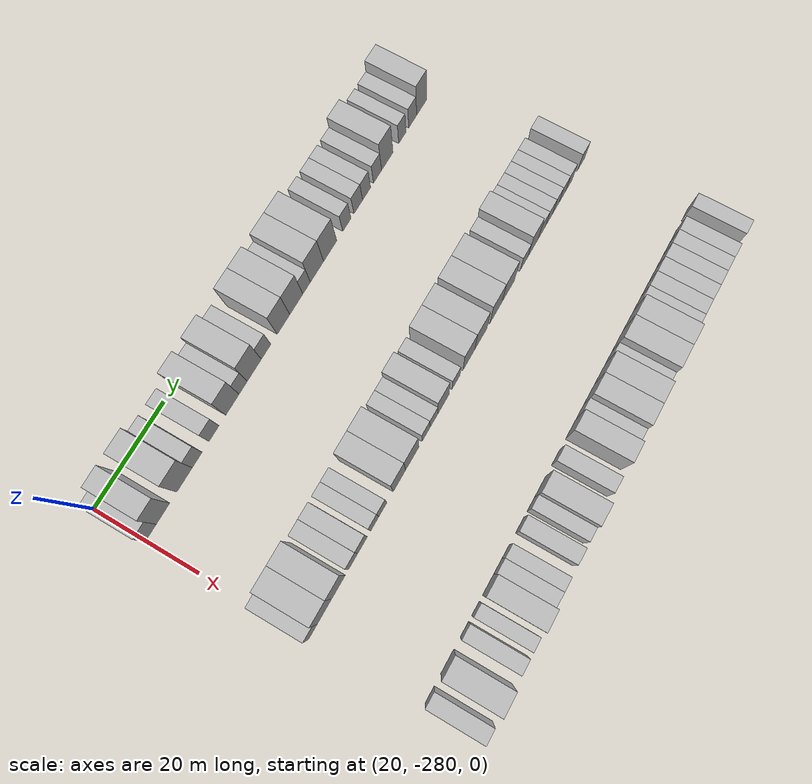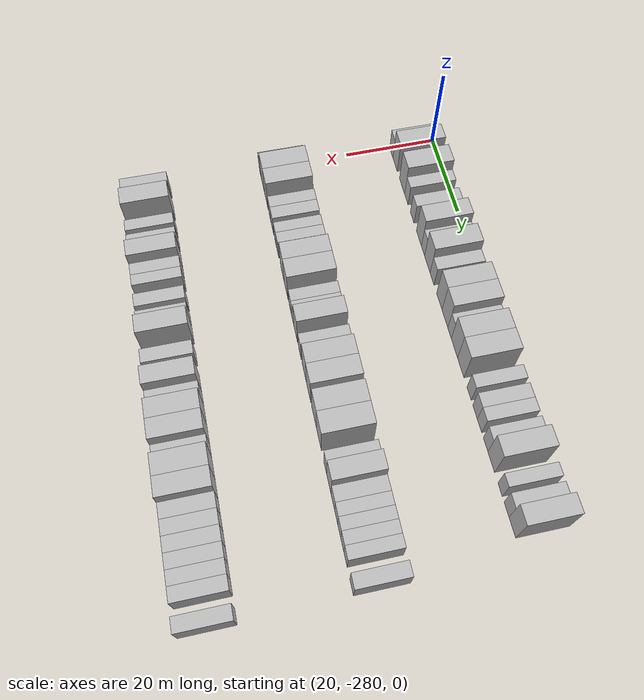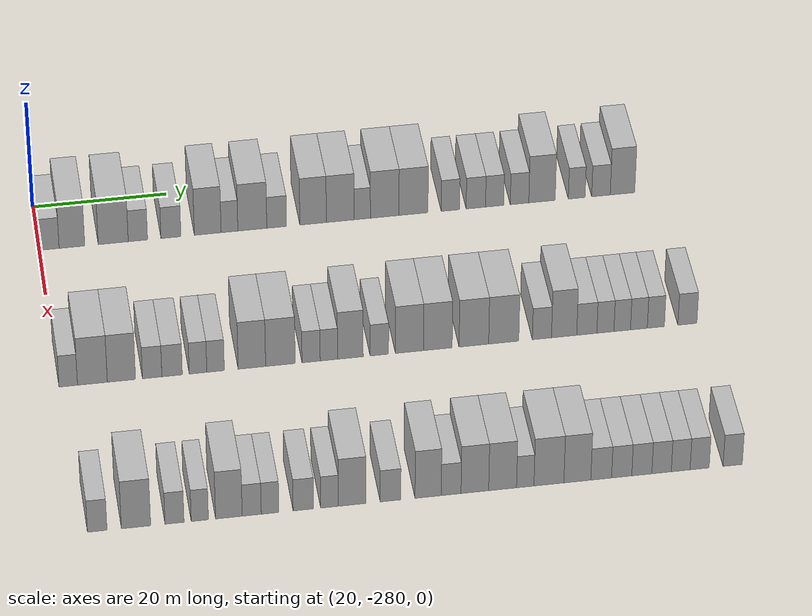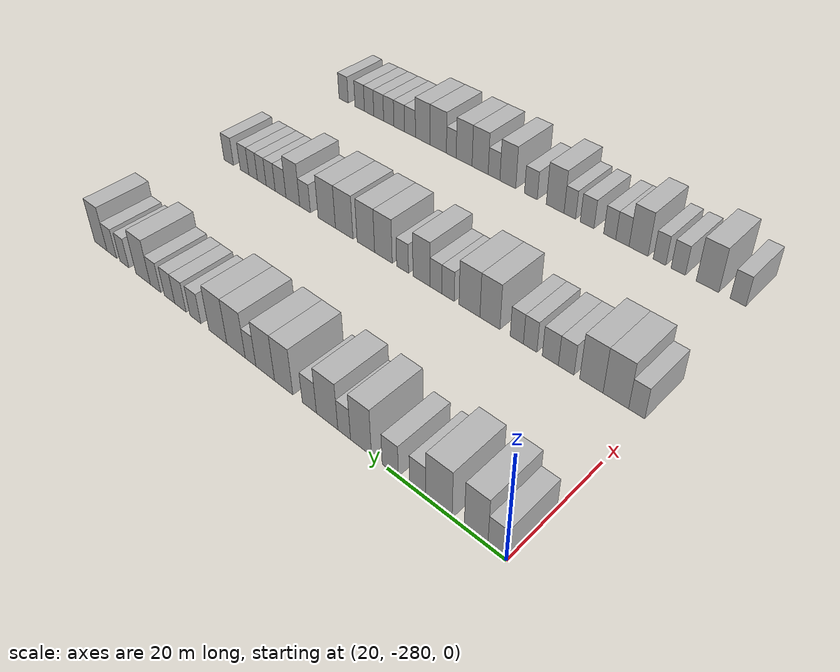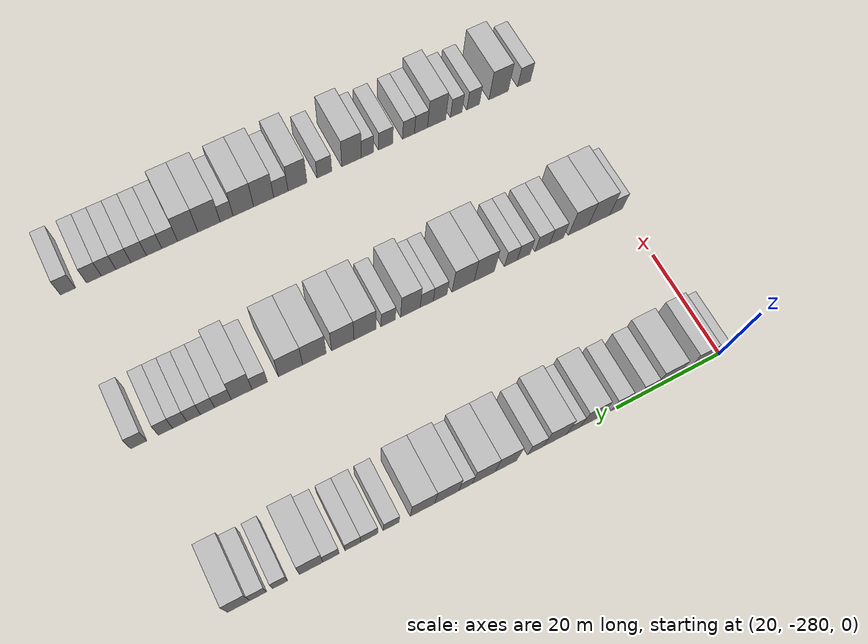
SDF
<sdf version="1.6">
 <world name="default">
  <model name="building_1">
   <static>1</static>
   <pose>25.0000 -278.5188 0 0.000000 0.000000 0.000000</pose>
   <link name="link">
    <pose>0 0 3.00 0 0 0</pose>
    <collision name="collision"><geometry><box><size>10.0000 2.9624 6.0000</size></box></geometry></collision>
    <visual name="visual">
     <cast_shadows>0</cast_shadows>
     <geometry><box><size>10.0000 2.9624 6.0000</size></box></geometry>
     <material>
      <script>
       <uri>model://HANNAS_wall/materials/scripts</uri>
       <uri>model://HANNAS_wall/materials/textures</uri>
       <name>vrc/HANNAS_wall</name>
      </script>
     </material>
    </visual>
   </link>
  </model>
  <model name="building_2">
   <static>1</static>
   <pose>25.0000 -275.1357 0 0.000000 0.000000 0.000000</pose>
   <link name="link">
    <pose>0 0 4.50 0 0 0</pose>
    <collision name="collision"><geometry><box><size>10.0000 3.8038 9.0000</size></box></geometry></collision>
    <visual name="visual">
     <cast_shadows>0</cast_shadows>
     <geometry><box><size>10.0000 3.8038 9.0000</size></box></geometry>
     <material>
      <script>
       <uri>model://HANNAS_wall/materials/scripts</uri>
       <uri>model://HANNAS_wall/materials/textures</uri>
       <name>vrc/HANNAS_wall</name>
      </script>
     </material>
    </visual>
   </link>
  </model>
  <model name="building_3">
   <static>1</static>
   <pose>25.0000 -269.0056 0 0.000000 0.000000 0.000000</pose>
   <link name="link">
    <pose>0 0 4.50 0 0 0</pose>
    <collision name="collision"><geometry><box><size>10.0000 4.4563 9.0000</size></box></geometry></collision>
    <visual name="visual">
     <cast_shadows>0</cast_shadows>
     <geometry><box><size>10.0000 4.4563 9.0000</size></box></geometry>
     <material>
      <script>
       <uri>model://HANNAS_wall/materials/scripts</uri>
       <uri>model://HANNAS_wall/materials/textures</uri>
       <name>vrc/HANNAS_wall</name>
      </script>
     </material>
    </visual>
   </link>
  </model>
  <model name="building_4">
   <static>1</static>
   <pose>25.0000 -265.3412 0 0.000000 0.000000 0.000000</pose>
   <link name="link">
    <pose>0 0 3.00 0 0 0</pose>
    <collision name="collision"><geometry><box><size>10.0000 2.8724 6.0000</size></box></geometry></collision>
    <visual name="visual">
     <cast_shadows>0</cast_shadows>
     <geometry><box><size>10.0000 2.8724 6.0000</size></box></geometry>
     <material>
      <script>
       <uri>model://HANNAS_wall/materials/scripts</uri>
       <uri>model://HANNAS_wall/materials/textures</uri>
       <name>vrc/HANNAS_wall</name>
      </script>
     </material>
    </visual>
   </link>
  </model>
  <model name="building_5">
   <static>1</static>
   <pose>25.0000 -260.4188 0 0.000000 0.000000 0.000000</pose>
   <link name="link">
    <pose>0 0 3.00 0 0 0</pose>
    <collision name="collision"><geometry><box><size>10.0000 2.9724 6.0000</size></box></geometry></collision>
    <visual name="visual">
     <cast_shadows>0</cast_shadows>
     <geometry><box><size>10.0000 2.9724 6.0000</size></box></geometry>
     <material>
      <script>
       <uri>model://HANNAS_wall/materials/scripts</uri>
       <uri>model://HANNAS_wall/materials/textures</uri>
       <name>vrc/HANNAS_wall</name>
      </script>
     </material>
    </visual>
   </link>
  </model>
  <model name="building_6">
   <static>1</static>
   <pose>25.0000 -254.9348 0 0.000000 0.000000 0.000000</pose>
   <link name="link">
    <pose>0 0 4.50 0 0 0</pose>
    <collision name="collision"><geometry><box><size>10.0000 3.9955 9.0000</size></box></geometry></collision>
    <visual name="visual">
     <cast_shadows>0</cast_shadows>
     <geometry><box><size>10.0000 3.9955 9.0000</size></box></geometry>
     <material>
      <script>
       <uri>model://HANNAS_wall/materials/scripts</uri>
       <uri>model://HANNAS_wall/materials/textures</uri>
       <name>vrc/HANNAS_wall</name>
      </script>
     </material>
    </visual>
   </link>
  </model>
  <model name="building_7">
   <static>1</static>
   <pose>25.0000 -251.6873 0 0.000000 0.000000 0.000000</pose>
   <link name="link">
    <pose>0 0 3.00 0 0 0</pose>
    <collision name="collision"><geometry><box><size>10.0000 2.4995 6.0000</size></box></geometry></collision>
    <visual name="visual">
     <cast_shadows>0</cast_shadows>
     <geometry><box><size>10.0000 2.4995 6.0000</size></box></geometry>
     <material>
      <script>
       <uri>model://HANNAS_wall/materials/scripts</uri>
       <uri>model://HANNAS_wall/materials/textures</uri>
       <name>vrc/HANNAS_wall</name>
      </script>
     </material>
    </visual>
   </link>
  </model>
  <model name="building_8">
   <static>1</static>
   <pose>25.0000 -248.2750 0 0.000000 0.000000 0.000000</pose>
   <link name="link">
    <pose>0 0 4.50 0 0 0</pose>
    <collision name="collision"><geometry><box><size>10.0000 4.3251 9.0000</size></box></geometry></collision>
    <visual name="visual">
     <cast_shadows>0</cast_shadows>
     <geometry><box><size>10.0000 4.3251 9.0000</size></box></geometry>
     <material>
      <script>
       <uri>model://HANNAS_wall/materials/scripts</uri>
       <uri>model://HANNAS_wall/materials/textures</uri>
       <name>vrc/HANNAS_wall</name>
      </script>
     </material>
    </visual>
   </link>
  </model>
  <model name="building_9">
   <static>1</static>
   <pose>25.0000 -244.6391 0 0.000000 0.000000 0.000000</pose>
   <link name="link">
    <pose>0 0 3.00 0 0 0</pose>
    <collision name="collision"><geometry><box><size>10.0000 2.9468 6.0000</size></box></geometry></collision>
    <visual name="visual">
     <cast_shadows>0</cast_shadows>
     <geometry><box><size>10.0000 2.9468 6.0000</size></box></geometry>
     <material>
      <script>
       <uri>model://HANNAS_wall/materials/scripts</uri>
       <uri>model://HANNAS_wall/materials/textures</uri>
       <name>vrc/HANNAS_wall</name>
      </script>
     </material>
    </visual>
   </link>
  </model>
  <model name="building_10">
   <static>1</static>
   <pose>25.0000 -239.1792 0 0.000000 0.000000 0.000000</pose>
   <link name="link">
    <pose>0 0 4.50 0 0 0</pose>
    <collision name="collision"><geometry><box><size>10.0000 3.9728 9.0000</size></box></geometry></collision>
    <visual name="visual">
     <cast_shadows>0</cast_shadows>
     <geometry><box><size>10.0000 3.9728 9.0000</size></box></geometry>
     <material>
      <script>
       <uri>model://HANNAS_wall/materials/scripts</uri>
       <uri>model://HANNAS_wall/materials/textures</uri>
       <name>vrc/HANNAS_wall</name>
      </script>
     </material>
    </visual>
   </link>
  </model>
  <model name="building_11">
   <static>1</static>
   <pose>25.0000 -235.1122 0 0.000000 0.000000 0.000000</pose>
   <link name="link">
    <pose>0 0 4.50 0 0 0</pose>
    <collision name="collision"><geometry><box><size>10.0000 4.1613 9.0000</size></box></geometry></collision>
    <visual name="visual">
     <cast_shadows>0</cast_shadows>
     <geometry><box><size>10.0000 4.1613 9.0000</size></box></geometry>
     <material>
      <script>
       <uri>model://HANNAS_wall/materials/scripts</uri>
       <uri>model://HANNAS_wall/materials/textures</uri>
       <name>vrc/HANNAS_wall</name>
      </script>
     </material>
    </visual>
   </link>
  </model>
  <model name="building_12">
   <static>1</static>
   <pose>25.0000 -231.8100 0 0.000000 0.000000 0.000000</pose>
   <link name="link">
    <pose>0 0 3.00 0 0 0</pose>
    <collision name="collision"><geometry><box><size>10.0000 2.4430 6.0000</size></box></geometry></collision>
    <visual name="visual">
     <cast_shadows>0</cast_shadows>
     <geometry><box><size>10.0000 2.4430 6.0000</size></box></geometry>
     <material>
      <script>
       <uri>model://HANNAS_wall/materials/scripts</uri>
       <uri>model://HANNAS_wall/materials/textures</uri>
       <name>vrc/HANNAS_wall</name>
      </script>
     </material>
    </visual>
   </link>
  </model>
  <model name="building_13">
   <static>1</static>
   <pose>25.0000 -228.4294 0 0.000000 0.000000 0.000000</pose>
   <link name="link">
    <pose>0 0 4.50 0 0 0</pose>
    <collision name="collision"><geometry><box><size>10.0000 4.3182 9.0000</size></box></geometry></collision>
    <visual name="visual">
     <cast_shadows>0</cast_shadows>
     <geometry><box><size>10.0000 4.3182 9.0000</size></box></geometry>
     <material>
      <script>
       <uri>model://HANNAS_wall/materials/scripts</uri>
       <uri>model://HANNAS_wall/materials/textures</uri>
       <name>vrc/HANNAS_wall</name>
      </script>
     </material>
    </visual>
   </link>
  </model>
  <model name="building_14">
   <static>1</static>
   <pose>25.0000 -224.0948 0 0.000000 0.000000 0.000000</pose>
   <link name="link">
    <pose>0 0 4.50 0 0 0</pose>
    <collision name="collision"><geometry><box><size>10.0000 4.3510 9.0000</size></box></geometry></collision>
    <visual name="visual">
     <cast_shadows>0</cast_shadows>
     <geometry><box><size>10.0000 4.3510 9.0000</size></box></geometry>
     <material>
      <script>
       <uri>model://HANNAS_wall/materials/scripts</uri>
       <uri>model://HANNAS_wall/materials/textures</uri>
       <name>vrc/HANNAS_wall</name>
      </script>
     </material>
    </visual>
   </link>
  </model>
  <model name="building_15">
   <static>1</static>
   <pose>25.0000 -218.5361 0 0.000000 0.000000 0.000000</pose>
   <link name="link">
    <pose>0 0 3.00 0 0 0</pose>
    <collision name="collision"><geometry><box><size>10.0000 2.7663 6.0000</size></box></geometry></collision>
    <visual name="visual">
     <cast_shadows>0</cast_shadows>
     <geometry><box><size>10.0000 2.7663 6.0000</size></box></geometry>
     <material>
      <script>
       <uri>model://HANNAS_wall/materials/scripts</uri>
       <uri>model://HANNAS_wall/materials/textures</uri>
       <name>vrc/HANNAS_wall</name>
      </script>
     </material>
    </visual>
   </link>
  </model>
  <model name="building_16">
   <static>1</static>
   <pose>25.0000 -214.6877 0 0.000000 0.000000 0.000000</pose>
   <link name="link">
    <pose>0 0 3.00 0 0 0</pose>
    <collision name="collision"><geometry><box><size>10.0000 2.9305 6.0000</size></box></geometry></collision>
    <visual name="visual">
     <cast_shadows>0</cast_shadows>
     <geometry><box><size>10.0000 2.9305 6.0000</size></box></geometry>
     <material>
      <script>
       <uri>model://HANNAS_wall/materials/scripts</uri>
       <uri>model://HANNAS_wall/materials/textures</uri>
       <name>vrc/HANNAS_wall</name>
      </script>
     </material>
    </visual>
   </link>
  </model>
  <model name="building_17">
   <static>1</static>
   <pose>25.0000 -211.8568 0 0.000000 0.000000 0.000000</pose>
   <link name="link">
    <pose>0 0 3.00 0 0 0</pose>
    <collision name="collision"><geometry><box><size>10.0000 2.7313 6.0000</size></box></geometry></collision>
    <visual name="visual">
     <cast_shadows>0</cast_shadows>
     <geometry><box><size>10.0000 2.7313 6.0000</size></box></geometry>
     <material>
      <script>
       <uri>model://HANNAS_wall/materials/scripts</uri>
       <uri>model://HANNAS_wall/materials/textures</uri>
       <name>vrc/HANNAS_wall</name>
      </script>
     </material>
    </visual>
   </link>
  </model>
  <model name="building_18">
   <static>1</static>
   <pose>25.0000 -208.0893 0 0.000000 0.000000 0.000000</pose>
   <link name="link">
    <pose>0 0 3.00 0 0 0</pose>
    <collision name="collision"><geometry><box><size>10.0000 2.8035 6.0000</size></box></geometry></collision>
    <visual name="visual">
     <cast_shadows>0</cast_shadows>
     <geometry><box><size>10.0000 2.8035 6.0000</size></box></geometry>
     <material>
      <script>
       <uri>model://HANNAS_wall/materials/scripts</uri>
       <uri>model://HANNAS_wall/materials/textures</uri>
       <name>vrc/HANNAS_wall</name>
      </script>
     </material>
    </visual>
   </link>
  </model>
  <model name="building_19">
   <static>1</static>
   <pose>25.0000 -204.6888 0 0.000000 0.000000 0.000000</pose>
   <link name="link">
    <pose>0 0 4.50 0 0 0</pose>
    <collision name="collision"><geometry><box><size>10.0000 3.9975 9.0000</size></box></geometry></collision>
    <visual name="visual">
     <cast_shadows>0</cast_shadows>
     <geometry><box><size>10.0000 3.9975 9.0000</size></box></geometry>
     <material>
      <script>
       <uri>model://HANNAS_wall/materials/scripts</uri>
       <uri>model://HANNAS_wall/materials/textures</uri>
       <name>vrc/HANNAS_wall</name>
      </script>
     </material>
    </visual>
   </link>
  </model>
  <model name="building_20">
   <static>1</static>
   <pose>25.0000 -199.4156 0 0.000000 0.000000 0.000000</pose>
   <link name="link">
    <pose>0 0 3.00 0 0 0</pose>
    <collision name="collision"><geometry><box><size>10.0000 2.5488 6.0000</size></box></geometry></collision>
    <visual name="visual">
     <cast_shadows>0</cast_shadows>
     <geometry><box><size>10.0000 2.5488 6.0000</size></box></geometry>
     <material>
      <script>
       <uri>model://HANNAS_wall/materials/scripts</uri>
       <uri>model://HANNAS_wall/materials/textures</uri>
       <name>vrc/HANNAS_wall</name>
      </script>
     </material>
    </visual>
   </link>
  </model>
  <model name="building_21">
   <static>1</static>
   <pose>25.0000 -195.7328 0 0.000000 0.000000 0.000000</pose>
   <link name="link">
    <pose>0 0 3.00 0 0 0</pose>
    <collision name="collision"><geometry><box><size>10.0000 2.8169 6.0000</size></box></geometry></collision>
    <visual name="visual">
     <cast_shadows>0</cast_shadows>
     <geometry><box><size>10.0000 2.8169 6.0000</size></box></geometry>
     <material>
      <script>
       <uri>model://HANNAS_wall/materials/scripts</uri>
       <uri>model://HANNAS_wall/materials/textures</uri>
       <name>vrc/HANNAS_wall</name>
      </script>
     </material>
    </visual>
   </link>
  </model>
  <model name="building_22">
   <static>1</static>
   <pose>25.0000 -192.4655 0 0.000000 0.000000 0.000000</pose>
   <link name="link">
    <pose>0 0 4.50 0 0 0</pose>
    <collision name="collision"><geometry><box><size>10.0000 3.7176 9.0000</size></box></geometry></collision>
    <visual name="visual">
     <cast_shadows>0</cast_shadows>
     <geometry><box><size>10.0000 3.7176 9.0000</size></box></geometry>
     <material>
      <script>
       <uri>model://HANNAS_wall/materials/scripts</uri>
       <uri>model://HANNAS_wall/materials/textures</uri>
       <name>vrc/HANNAS_wall</name>
      </script>
     </material>
    </visual>
   </link>
  </model>
  <model name="building_147">
   <static>1</static>
   <pose>55.0000 -278.6737 0 0.000000 0.000000 0.000000</pose>
   <link name="link">
    <pose>0 0 3.00 0 0 0</pose>
    <collision name="collision"><geometry><box><size>10.0000 2.6526 6.0000</size></box></geometry></collision>
    <visual name="visual">
     <cast_shadows>0</cast_shadows>
     <geometry><box><size>10.0000 2.6526 6.0000</size></box></geometry>
     <material>
      <script>
       <uri>model://HANNAS_wall/materials/scripts</uri>
       <uri>model://HANNAS_wall/materials/textures</uri>
       <name>vrc/HANNAS_wall</name>
      </script>
     </material>
    </visual>
   </link>
  </model>
  <model name="building_148">
   <static>1</static>
   <pose>55.0000 -275.1987 0 0.000000 0.000000 0.000000</pose>
   <link name="link">
    <pose>0 0 4.50 0 0 0</pose>
    <collision name="collision"><geometry><box><size>10.0000 4.2975 9.0000</size></box></geometry></collision>
    <visual name="visual">
     <cast_shadows>0</cast_shadows>
     <geometry><box><size>10.0000 4.2975 9.0000</size></box></geometry>
     <material>
      <script>
       <uri>model://HANNAS_wall/materials/scripts</uri>
       <uri>model://HANNAS_wall/materials/textures</uri>
       <name>vrc/HANNAS_wall</name>
      </script>
     </material>
    </visual>
   </link>
  </model>
  <model name="building_149">
   <static>1</static>
   <pose>55.0000 -271.0229 0 0.000000 0.000000 0.000000</pose>
   <link name="link">
    <pose>0 0 4.50 0 0 0</pose>
    <collision name="collision"><geometry><box><size>10.0000 4.0540 9.0000</size></box></geometry></collision>
    <visual name="visual">
     <cast_shadows>0</cast_shadows>
     <geometry><box><size>10.0000 4.0540 9.0000</size></box></geometry>
     <material>
      <script>
       <uri>model://HANNAS_wall/materials/scripts</uri>
       <uri>model://HANNAS_wall/materials/textures</uri>
       <name>vrc/HANNAS_wall</name>
      </script>
     </material>
    </visual>
   </link>
  </model>
  <model name="building_150">
   <static>1</static>
   <pose>55.0000 -266.5959 0 0.000000 0.000000 0.000000</pose>
   <link name="link">
    <pose>0 0 3.00 0 0 0</pose>
    <collision name="collision"><geometry><box><size>10.0000 2.8000 6.0000</size></box></geometry></collision>
    <visual name="visual">
     <cast_shadows>0</cast_shadows>
     <geometry><box><size>10.0000 2.8000 6.0000</size></box></geometry>
     <material>
      <script>
       <uri>model://HANNAS_wall/materials/scripts</uri>
       <uri>model://HANNAS_wall/materials/textures</uri>
       <name>vrc/HANNAS_wall</name>
      </script>
     </material>
    </visual>
   </link>
  </model>
  <model name="building_151">
   <static>1</static>
   <pose>55.0000 -263.7241 0 0.000000 0.000000 0.000000</pose>
   <link name="link">
    <pose>0 0 3.00 0 0 0</pose>
    <collision name="collision"><geometry><box><size>10.0000 2.9434 6.0000</size></box></geometry></collision>
    <visual name="visual">
     <cast_shadows>0</cast_shadows>
     <geometry><box><size>10.0000 2.9434 6.0000</size></box></geometry>
     <material>
      <script>
       <uri>model://HANNAS_wall/materials/scripts</uri>
       <uri>model://HANNAS_wall/materials/textures</uri>
       <name>vrc/HANNAS_wall</name>
      </script>
     </material>
    </visual>
   </link>
  </model>
  <model name="building_152">
   <static>1</static>
   <pose>55.0000 -259.9841 0 0.000000 0.000000 0.000000</pose>
   <link name="link">
    <pose>0 0 3.00 0 0 0</pose>
    <collision name="collision"><geometry><box><size>10.0000 2.5366 6.0000</size></box></geometry></collision>
    <visual name="visual">
     <cast_shadows>0</cast_shadows>
     <geometry><box><size>10.0000 2.5366 6.0000</size></box></geometry>
     <material>
      <script>
       <uri>model://HANNAS_wall/materials/scripts</uri>
       <uri>model://HANNAS_wall/materials/textures</uri>
       <name>vrc/HANNAS_wall</name>
      </script>
     </material>
    </visual>
   </link>
  </model>
  <model name="building_153">
   <static>1</static>
   <pose>55.0000 -257.4505 0 0.000000 0.000000 0.000000</pose>
   <link name="link">
    <pose>0 0 3.00 0 0 0</pose>
    <collision name="collision"><geometry><box><size>10.0000 2.5308 6.0000</size></box></geometry></collision>
    <visual name="visual">
     <cast_shadows>0</cast_shadows>
     <geometry><box><size>10.0000 2.5308 6.0000</size></box></geometry>
     <material>
      <script>
       <uri>model://HANNAS_wall/materials/scripts</uri>
       <uri>model://HANNAS_wall/materials/textures</uri>
       <name>vrc/HANNAS_wall</name>
      </script>
     </material>
    </visual>
   </link>
  </model>
  <model name="building_154">
   <static>1</static>
   <pose>55.0000 -252.1973 0 0.000000 0.000000 0.000000</pose>
   <link name="link">
    <pose>0 0 4.50 0 0 0</pose>
    <collision name="collision"><geometry><box><size>10.0000 3.9756 9.0000</size></box></geometry></collision>
    <visual name="visual">
     <cast_shadows>0</cast_shadows>
     <geometry><box><size>10.0000 3.9756 9.0000</size></box></geometry>
     <material>
      <script>
       <uri>model://HANNAS_wall/materials/scripts</uri>
       <uri>model://HANNAS_wall/materials/textures</uri>
       <name>vrc/HANNAS_wall</name>
      </script>
     </material>
    </visual>
   </link>
  </model>
  <model name="building_155">
   <static>1</static>
   <pose>55.0000 -248.0690 0 0.000000 0.000000 0.000000</pose>
   <link name="link">
    <pose>0 0 4.50 0 0 0</pose>
    <collision name="collision"><geometry><box><size>10.0000 4.2809 9.0000</size></box></geometry></collision>
    <visual name="visual">
     <cast_shadows>0</cast_shadows>
     <geometry><box><size>10.0000 4.2809 9.0000</size></box></geometry>
     <material>
      <script>
       <uri>model://HANNAS_wall/materials/scripts</uri>
       <uri>model://HANNAS_wall/materials/textures</uri>
       <name>vrc/HANNAS_wall</name>
      </script>
     </material>
    </visual>
   </link>
  </model>
  <model name="building_156">
   <static>1</static>
   <pose>55.0000 -243.6100 0 0.000000 0.000000 0.000000</pose>
   <link name="link">
    <pose>0 0 3.00 0 0 0</pose>
    <collision name="collision"><geometry><box><size>10.0000 2.6371 6.0000</size></box></geometry></collision>
    <visual name="visual">
     <cast_shadows>0</cast_shadows>
     <geometry><box><size>10.0000 2.6371 6.0000</size></box></geometry>
     <material>
      <script>
       <uri>model://HANNAS_wall/materials/scripts</uri>
       <uri>model://HANNAS_wall/materials/textures</uri>
       <name>vrc/HANNAS_wall</name>
      </script>
     </material>
    </visual>
   </link>
  </model>
  <model name="building_157">
   <static>1</static>
   <pose>55.0000 -241.0347 0 0.000000 0.000000 0.000000</pose>
   <link name="link">
    <pose>0 0 3.00 0 0 0</pose>
    <collision name="collision"><geometry><box><size>10.0000 2.5135 6.0000</size></box></geometry></collision>
    <visual name="visual">
     <cast_shadows>0</cast_shadows>
     <geometry><box><size>10.0000 2.5135 6.0000</size></box></geometry>
     <material>
      <script>
       <uri>model://HANNAS_wall/materials/scripts</uri>
       <uri>model://HANNAS_wall/materials/textures</uri>
       <name>vrc/HANNAS_wall</name>
      </script>
     </material>
    </visual>
   </link>
  </model>
  <model name="building_158">
   <static>1</static>
   <pose>55.0000 -237.9075 0 0.000000 0.000000 0.000000</pose>
   <link name="link">
    <pose>0 0 4.50 0 0 0</pose>
    <collision name="collision"><geometry><box><size>10.0000 3.7409 9.0000</size></box></geometry></collision>
    <visual name="visual">
     <cast_shadows>0</cast_shadows>
     <geometry><box><size>10.0000 3.7409 9.0000</size></box></geometry>
     <material>
      <script>
       <uri>model://HANNAS_wall/materials/scripts</uri>
       <uri>model://HANNAS_wall/materials/textures</uri>
       <name>vrc/HANNAS_wall</name>
      </script>
     </material>
    </visual>
   </link>
  </model>
  <model name="building_159">
   <static>1</static>
   <pose>55.0000 -233.6934 0 0.000000 0.000000 0.000000</pose>
   <link name="link">
    <pose>0 0 3.00 0 0 0</pose>
    <collision name="collision"><geometry><box><size>10.0000 2.6874 6.0000</size></box></geometry></collision>
    <visual name="visual">
     <cast_shadows>0</cast_shadows>
     <geometry><box><size>10.0000 2.6874 6.0000</size></box></geometry>
     <material>
      <script>
       <uri>model://HANNAS_wall/materials/scripts</uri>
       <uri>model://HANNAS_wall/materials/textures</uri>
       <name>vrc/HANNAS_wall</name>
      </script>
     </material>
    </visual>
   </link>
  </model>
  <model name="building_160">
   <static>1</static>
   <pose>55.0000 -229.3016 0 0.000000 0.000000 0.000000</pose>
   <link name="link">
    <pose>0 0 4.50 0 0 0</pose>
    <collision name="collision"><geometry><box><size>10.0000 4.0961 9.0000</size></box></geometry></collision>
    <visual name="visual">
     <cast_shadows>0</cast_shadows>
     <geometry><box><size>10.0000 4.0961 9.0000</size></box></geometry>
     <material>
      <script>
       <uri>model://HANNAS_wall/materials/scripts</uri>
       <uri>model://HANNAS_wall/materials/textures</uri>
       <name>vrc/HANNAS_wall</name>
      </script>
     </material>
    </visual>
   </link>
  </model>
  <model name="building_161">
   <static>1</static>
   <pose>55.0000 -225.1613 0 0.000000 0.000000 0.000000</pose>
   <link name="link">
    <pose>0 0 4.50 0 0 0</pose>
    <collision name="collision"><geometry><box><size>10.0000 4.1845 9.0000</size></box></geometry></collision>
    <visual name="visual">
     <cast_shadows>0</cast_shadows>
     <geometry><box><size>10.0000 4.1845 9.0000</size></box></geometry>
     <material>
      <script>
       <uri>model://HANNAS_wall/materials/scripts</uri>
       <uri>model://HANNAS_wall/materials/textures</uri>
       <name>vrc/HANNAS_wall</name>
      </script>
     </material>
    </visual>
   </link>
  </model>
  <model name="building_162">
   <static>1</static>
   <pose>55.0000 -219.9013 0 0.000000 0.000000 0.000000</pose>
   <link name="link">
    <pose>0 0 4.50 0 0 0</pose>
    <collision name="collision"><geometry><box><size>10.0000 4.3354 9.0000</size></box></geometry></collision>
    <visual name="visual">
     <cast_shadows>0</cast_shadows>
     <geometry><box><size>10.0000 4.3354 9.0000</size></box></geometry>
     <material>
      <script>
       <uri>model://HANNAS_wall/materials/scripts</uri>
       <uri>model://HANNAS_wall/materials/textures</uri>
       <name>vrc/HANNAS_wall</name>
      </script>
     </material>
    </visual>
   </link>
  </model>
  <model name="building_163">
   <static>1</static>
   <pose>55.0000 -215.5321 0 0.000000 0.000000 0.000000</pose>
   <link name="link">
    <pose>0 0 4.50 0 0 0</pose>
    <collision name="collision"><geometry><box><size>10.0000 4.4032 9.0000</size></box></geometry></collision>
    <visual name="visual">
     <cast_shadows>0</cast_shadows>
     <geometry><box><size>10.0000 4.4032 9.0000</size></box></geometry>
     <material>
      <script>
       <uri>model://HANNAS_wall/materials/scripts</uri>
       <uri>model://HANNAS_wall/materials/textures</uri>
       <name>vrc/HANNAS_wall</name>
      </script>
     </material>
    </visual>
   </link>
  </model>
  <model name="building_164">
   <static>1</static>
   <pose>55.0000 -209.9298 0 0.000000 0.000000 0.000000</pose>
   <link name="link">
    <pose>0 0 3.00 0 0 0</pose>
    <collision name="collision"><geometry><box><size>10.0000 2.8014 6.0000</size></box></geometry></collision>
    <visual name="visual">
     <cast_shadows>0</cast_shadows>
     <geometry><box><size>10.0000 2.8014 6.0000</size></box></geometry>
     <material>
      <script>
       <uri>model://HANNAS_wall/materials/scripts</uri>
       <uri>model://HANNAS_wall/materials/textures</uri>
       <name>vrc/HANNAS_wall</name>
      </script>
     </material>
    </visual>
   </link>
  </model>
  <model name="building_165">
   <static>1</static>
   <pose>55.0000 -206.6754 0 0.000000 0.000000 0.000000</pose>
   <link name="link">
    <pose>0 0 4.50 0 0 0</pose>
    <collision name="collision"><geometry><box><size>10.0000 3.7074 9.0000</size></box></geometry></collision>
    <visual name="visual">
     <cast_shadows>0</cast_shadows>
     <geometry><box><size>10.0000 3.7074 9.0000</size></box></geometry>
     <material>
      <script>
       <uri>model://HANNAS_wall/materials/scripts</uri>
       <uri>model://HANNAS_wall/materials/textures</uri>
       <name>vrc/HANNAS_wall</name>
      </script>
     </material>
    </visual>
   </link>
  </model>
  <model name="building_166">
   <static>1</static>
   <pose>55.0000 -203.3421 0 0.000000 0.000000 0.000000</pose>
   <link name="link">
    <pose>0 0 3.00 0 0 0</pose>
    <collision name="collision"><geometry><box><size>10.0000 2.9592 6.0000</size></box></geometry></collision>
    <visual name="visual">
     <cast_shadows>0</cast_shadows>
     <geometry><box><size>10.0000 2.9592 6.0000</size></box></geometry>
     <material>
      <script>
       <uri>model://HANNAS_wall/materials/scripts</uri>
       <uri>model://HANNAS_wall/materials/textures</uri>
       <name>vrc/HANNAS_wall</name>
      </script>
     </material>
    </visual>
   </link>
  </model>
  <model name="building_167">
   <static>1</static>
   <pose>55.0000 -200.6035 0 0.000000 0.000000 0.000000</pose>
   <link name="link">
    <pose>0 0 3.00 0 0 0</pose>
    <collision name="collision"><geometry><box><size>10.0000 2.5182 6.0000</size></box></geometry></collision>
    <visual name="visual">
     <cast_shadows>0</cast_shadows>
     <geometry><box><size>10.0000 2.5182 6.0000</size></box></geometry>
     <material>
      <script>
       <uri>model://HANNAS_wall/materials/scripts</uri>
       <uri>model://HANNAS_wall/materials/textures</uri>
       <name>vrc/HANNAS_wall</name>
      </script>
     </material>
    </visual>
   </link>
  </model>
  <model name="building_168">
   <static>1</static>
   <pose>55.0000 -198.1250 0 0.000000 0.000000 0.000000</pose>
   <link name="link">
    <pose>0 0 3.00 0 0 0</pose>
    <collision name="collision"><geometry><box><size>10.0000 2.4387 6.0000</size></box></geometry></collision>
    <visual name="visual">
     <cast_shadows>0</cast_shadows>
     <geometry><box><size>10.0000 2.4387 6.0000</size></box></geometry>
     <material>
      <script>
       <uri>model://HANNAS_wall/materials/scripts</uri>
       <uri>model://HANNAS_wall/materials/textures</uri>
       <name>vrc/HANNAS_wall</name>
      </script>
     </material>
    </visual>
   </link>
  </model>
  <model name="building_169">
   <static>1</static>
   <pose>55.0000 -195.6668 0 0.000000 0.000000 0.000000</pose>
   <link name="link">
    <pose>0 0 3.00 0 0 0</pose>
    <collision name="collision"><geometry><box><size>10.0000 2.4777 6.0000</size></box></geometry></collision>
    <visual name="visual">
     <cast_shadows>0</cast_shadows>
     <geometry><box><size>10.0000 2.4777 6.0000</size></box></geometry>
     <material>
      <script>
       <uri>model://HANNAS_wall/materials/scripts</uri>
       <uri>model://HANNAS_wall/materials/textures</uri>
       <name>vrc/HANNAS_wall</name>
      </script>
     </material>
    </visual>
   </link>
  </model>
  <model name="building_170">
   <static>1</static>
   <pose>55.0000 -193.1720 0 0.000000 0.000000 0.000000</pose>
   <link name="link">
    <pose>0 0 3.00 0 0 0</pose>
    <collision name="collision"><geometry><box><size>10.0000 2.5119 6.0000</size></box></geometry></collision>
    <visual name="visual">
     <cast_shadows>0</cast_shadows>
     <geometry><box><size>10.0000 2.5119 6.0000</size></box></geometry>
     <material>
      <script>
       <uri>model://HANNAS_wall/materials/scripts</uri>
       <uri>model://HANNAS_wall/materials/textures</uri>
       <name>vrc/HANNAS_wall</name>
      </script>
     </material>
    </visual>
   </link>
  </model>
  <model name="building_171">
   <static>1</static>
   <pose>55.0000 -188.5149 0 0.000000 0.000000 0.000000</pose>
   <link name="link">
    <pose>0 0 3.00 0 0 0</pose>
    <collision name="collision"><geometry><box><size>10.0000 2.8025 6.0000</size></box></geometry></collision>
    <visual name="visual">
     <cast_shadows>0</cast_shadows>
     <geometry><box><size>10.0000 2.8025 6.0000</size></box></geometry>
     <material>
      <script>
       <uri>model://HANNAS_wall/materials/scripts</uri>
       <uri>model://HANNAS_wall/materials/textures</uri>
       <name>vrc/HANNAS_wall</name>
      </script>
     </material>
    </visual>
   </link>
  </model>
  <model name="building_290">
   <static>1</static>
   <pose>85.0000 -277.6354 0 0.000000 0.000000 0.000000</pose>
   <link name="link">
    <pose>0 0 3.00 0 0 0</pose>
    <collision name="collision"><geometry><box><size>10.0000 2.7291 6.0000</size></box></geometry></collision>
    <visual name="visual">
     <cast_shadows>0</cast_shadows>
     <geometry><box><size>10.0000 2.7291 6.0000</size></box></geometry>
     <material>
      <script>
       <uri>model://HANNAS_wall/materials/scripts</uri>
       <uri>model://HANNAS_wall/materials/textures</uri>
       <name>vrc/HANNAS_wall</name>
      </script>
     </material>
    </visual>
   </link>
  </model>
  <model name="building_291">
   <static>1</static>
   <pose>85.0000 -272.2327 0 0.000000 0.000000 0.000000</pose>
   <link name="link">
    <pose>0 0 4.50 0 0 0</pose>
    <collision name="collision"><geometry><box><size>10.0000 4.0764 9.0000</size></box></geometry></collision>
    <visual name="visual">
     <cast_shadows>0</cast_shadows>
     <geometry><box><size>10.0000 4.0764 9.0000</size></box></geometry>
     <material>
      <script>
       <uri>model://HANNAS_wall/materials/scripts</uri>
       <uri>model://HANNAS_wall/materials/textures</uri>
       <name>vrc/HANNAS_wall</name>
      </script>
     </material>
    </visual>
   </link>
  </model>
  <model name="building_292">
   <static>1</static>
   <pose>85.0000 -266.8660 0 0.000000 0.000000 0.000000</pose>
   <link name="link">
    <pose>0 0 3.00 0 0 0</pose>
    <collision name="collision"><geometry><box><size>10.0000 2.6570 6.0000</size></box></geometry></collision>
    <visual name="visual">
     <cast_shadows>0</cast_shadows>
     <geometry><box><size>10.0000 2.6570 6.0000</size></box></geometry>
     <material>
      <script>
       <uri>model://HANNAS_wall/materials/scripts</uri>
       <uri>model://HANNAS_wall/materials/textures</uri>
       <name>vrc/HANNAS_wall</name>
      </script>
     </material>
    </visual>
   </link>
  </model>
  <model name="building_293">
   <static>1</static>
   <pose>85.0000 -263.3345 0 0.000000 0.000000 0.000000</pose>
   <link name="link">
    <pose>0 0 3.00 0 0 0</pose>
    <collision name="collision"><geometry><box><size>10.0000 2.4059 6.0000</size></box></geometry></collision>
    <visual name="visual">
     <cast_shadows>0</cast_shadows>
     <geometry><box><size>10.0000 2.4059 6.0000</size></box></geometry>
     <material>
      <script>
       <uri>model://HANNAS_wall/materials/scripts</uri>
       <uri>model://HANNAS_wall/materials/textures</uri>
       <name>vrc/HANNAS_wall</name>
      </script>
     </material>
    </visual>
   </link>
  </model>
  <model name="building_294">
   <static>1</static>
   <pose>85.0000 -259.2687 0 0.000000 0.000000 0.000000</pose>
   <link name="link">
    <pose>0 0 4.50 0 0 0</pose>
    <collision name="collision"><geometry><box><size>10.0000 3.7257 9.0000</size></box></geometry></collision>
    <visual name="visual">
     <cast_shadows>0</cast_shadows>
     <geometry><box><size>10.0000 3.7257 9.0000</size></box></geometry>
     <material>
      <script>
       <uri>model://HANNAS_wall/materials/scripts</uri>
       <uri>model://HANNAS_wall/materials/textures</uri>
       <name>vrc/HANNAS_wall</name>
      </script>
     </material>
    </visual>
   </link>
  </model>
  <model name="building_295">
   <static>1</static>
   <pose>85.0000 -256.0724 0 0.000000 0.000000 0.000000</pose>
   <link name="link">
    <pose>0 0 3.00 0 0 0</pose>
    <collision name="collision"><geometry><box><size>10.0000 2.6668 6.0000</size></box></geometry></collision>
    <visual name="visual">
     <cast_shadows>0</cast_shadows>
     <geometry><box><size>10.0000 2.6668 6.0000</size></box></geometry>
     <material>
      <script>
       <uri>model://HANNAS_wall/materials/scripts</uri>
       <uri>model://HANNAS_wall/materials/textures</uri>
       <name>vrc/HANNAS_wall</name>
      </script>
     </material>
    </visual>
   </link>
  </model>
  <model name="building_296">
   <static>1</static>
   <pose>85.0000 -253.5065 0 0.000000 0.000000 0.000000</pose>
   <link name="link">
    <pose>0 0 3.00 0 0 0</pose>
    <collision name="collision"><geometry><box><size>10.0000 2.4651 6.0000</size></box></geometry></collision>
    <visual name="visual">
     <cast_shadows>0</cast_shadows>
     <geometry><box><size>10.0000 2.4651 6.0000</size></box></geometry>
     <material>
      <script>
       <uri>model://HANNAS_wall/materials/scripts</uri>
       <uri>model://HANNAS_wall/materials/textures</uri>
       <name>vrc/HANNAS_wall</name>
      </script>
     </material>
    </visual>
   </link>
  </model>
  <model name="building_297">
   <static>1</static>
   <pose>85.0000 -248.8365 0 0.000000 0.000000 0.000000</pose>
   <link name="link">
    <pose>0 0 3.00 0 0 0</pose>
    <collision name="collision"><geometry><box><size>10.0000 2.8749 6.0000</size></box></geometry></collision>
    <visual name="visual">
     <cast_shadows>0</cast_shadows>
     <geometry><box><size>10.0000 2.8749 6.0000</size></box></geometry>
     <material>
      <script>
       <uri>model://HANNAS_wall/materials/scripts</uri>
       <uri>model://HANNAS_wall/materials/textures</uri>
       <name>vrc/HANNAS_wall</name>
      </script>
     </material>
    </visual>
   </link>
  </model>
  <model name="building_298">
   <static>1</static>
   <pose>85.0000 -245.1592 0 0.000000 0.000000 0.000000</pose>
   <link name="link">
    <pose>0 0 3.00 0 0 0</pose>
    <collision name="collision"><geometry><box><size>10.0000 2.4796 6.0000</size></box></geometry></collision>
    <visual name="visual">
     <cast_shadows>0</cast_shadows>
     <geometry><box><size>10.0000 2.4796 6.0000</size></box></geometry>
     <material>
      <script>
       <uri>model://HANNAS_wall/materials/scripts</uri>
       <uri>model://HANNAS_wall/materials/textures</uri>
       <name>vrc/HANNAS_wall</name>
      </script>
     </material>
    </visual>
   </link>
  </model>
  <model name="building_299">
   <static>1</static>
   <pose>85.0000 -241.9728 0 0.000000 0.000000 0.000000</pose>
   <link name="link">
    <pose>0 0 4.50 0 0 0</pose>
    <collision name="collision"><geometry><box><size>10.0000 3.8934 9.0000</size></box></geometry></collision>
    <visual name="visual">
     <cast_shadows>0</cast_shadows>
     <geometry><box><size>10.0000 3.8934 9.0000</size></box></geometry>
     <material>
      <script>
       <uri>model://HANNAS_wall/materials/scripts</uri>
       <uri>model://HANNAS_wall/materials/textures</uri>
       <name>vrc/HANNAS_wall</name>
      </script>
     </material>
    </visual>
   </link>
  </model>
  <model name="building_300">
   <static>1</static>
   <pose>85.0000 -236.5735 0 0.000000 0.000000 0.000000</pose>
   <link name="link">
    <pose>0 0 3.00 0 0 0</pose>
    <collision name="collision"><geometry><box><size>10.0000 2.9051 6.0000</size></box></geometry></collision>
    <visual name="visual">
     <cast_shadows>0</cast_shadows>
     <geometry><box><size>10.0000 2.9051 6.0000</size></box></geometry>
     <material>
      <script>
       <uri>model://HANNAS_wall/materials/scripts</uri>
       <uri>model://HANNAS_wall/materials/textures</uri>
       <name>vrc/HANNAS_wall</name>
      </script>
     </material>
    </visual>
   </link>
  </model>
  <model name="building_301">
   <static>1</static>
   <pose>85.0000 -231.2693 0 0.000000 0.000000 0.000000</pose>
   <link name="link">
    <pose>0 0 4.50 0 0 0</pose>
    <collision name="collision"><geometry><box><size>10.0000 3.7033 9.0000</size></box></geometry></collision>
    <visual name="visual">
     <cast_shadows>0</cast_shadows>
     <geometry><box><size>10.0000 3.7033 9.0000</size></box></geometry>
     <material>
      <script>
       <uri>model://HANNAS_wall/materials/scripts</uri>
       <uri>model://HANNAS_wall/materials/textures</uri>
       <name>vrc/HANNAS_wall</name>
      </script>
     </material>
    </visual>
   </link>
  </model>
  <model name="building_302">
   <static>1</static>
   <pose>85.0000 -228.0230 0 0.000000 0.000000 0.000000</pose>
   <link name="link">
    <pose>0 0 3.00 0 0 0</pose>
    <collision name="collision"><geometry><box><size>10.0000 2.7893 6.0000</size></box></geometry></collision>
    <visual name="visual">
     <cast_shadows>0</cast_shadows>
     <geometry><box><size>10.0000 2.7893 6.0000</size></box></geometry>
     <material>
      <script>
       <uri>model://HANNAS_wall/materials/scripts</uri>
       <uri>model://HANNAS_wall/materials/textures</uri>
       <name>vrc/HANNAS_wall</name>
      </script>
     </material>
    </visual>
   </link>
  </model>
  <model name="building_303">
   <static>1</static>
   <pose>85.0000 -224.6716 0 0.000000 0.000000 0.000000</pose>
   <link name="link">
    <pose>0 0 4.50 0 0 0</pose>
    <collision name="collision"><geometry><box><size>10.0000 3.9135 9.0000</size></box></geometry></collision>
    <visual name="visual">
     <cast_shadows>0</cast_shadows>
     <geometry><box><size>10.0000 3.9135 9.0000</size></box></geometry>
     <material>
      <script>
       <uri>model://HANNAS_wall/materials/scripts</uri>
       <uri>model://HANNAS_wall/materials/textures</uri>
       <name>vrc/HANNAS_wall</name>
      </script>
     </material>
    </visual>
   </link>
  </model>
  <model name="building_304">
   <static>1</static>
   <pose>85.0000 -220.7419 0 0.000000 0.000000 0.000000</pose>
   <link name="link">
    <pose>0 0 4.50 0 0 0</pose>
    <collision name="collision"><geometry><box><size>10.0000 3.9459 9.0000</size></box></geometry></collision>
    <visual name="visual">
     <cast_shadows>0</cast_shadows>
     <geometry><box><size>10.0000 3.9459 9.0000</size></box></geometry>
     <material>
      <script>
       <uri>model://HANNAS_wall/materials/scripts</uri>
       <uri>model://HANNAS_wall/materials/textures</uri>
       <name>vrc/HANNAS_wall</name>
      </script>
     </material>
    </visual>
   </link>
  </model>
  <model name="building_305">
   <static>1</static>
   <pose>85.0000 -217.5315 0 0.000000 0.000000 0.000000</pose>
   <link name="link">
    <pose>0 0 3.00 0 0 0</pose>
    <collision name="collision"><geometry><box><size>10.0000 2.4750 6.0000</size></box></geometry></collision>
    <visual name="visual">
     <cast_shadows>0</cast_shadows>
     <geometry><box><size>10.0000 2.4750 6.0000</size></box></geometry>
     <material>
      <script>
       <uri>model://HANNAS_wall/materials/scripts</uri>
       <uri>model://HANNAS_wall/materials/textures</uri>
       <name>vrc/HANNAS_wall</name>
      </script>
     </material>
    </visual>
   </link>
  </model>
  <model name="building_306">
   <static>1</static>
   <pose>85.0000 -214.1709 0 0.000000 0.000000 0.000000</pose>
   <link name="link">
    <pose>0 0 4.50 0 0 0</pose>
    <collision name="collision"><geometry><box><size>10.0000 4.2464 9.0000</size></box></geometry></collision>
    <visual name="visual">
     <cast_shadows>0</cast_shadows>
     <geometry><box><size>10.0000 4.2464 9.0000</size></box></geometry>
     <material>
      <script>
       <uri>model://HANNAS_wall/materials/scripts</uri>
       <uri>model://HANNAS_wall/materials/textures</uri>
       <name>vrc/HANNAS_wall</name>
      </script>
     </material>
    </visual>
   </link>
  </model>
  <model name="building_307">
   <static>1</static>
   <pose>85.0000 -210.1315 0 0.000000 0.000000 0.000000</pose>
   <link name="link">
    <pose>0 0 4.50 0 0 0</pose>
    <collision name="collision"><geometry><box><size>10.0000 3.8323 9.0000</size></box></geometry></collision>
    <visual name="visual">
     <cast_shadows>0</cast_shadows>
     <geometry><box><size>10.0000 3.8323 9.0000</size></box></geometry>
     <material>
      <script>
       <uri>model://HANNAS_wall/materials/scripts</uri>
       <uri>model://HANNAS_wall/materials/textures</uri>
       <name>vrc/HANNAS_wall</name>
      </script>
     </material>
    </visual>
   </link>
  </model>
  <model name="building_308">
   <static>1</static>
   <pose>85.0000 -206.7371 0 0.000000 0.000000 0.000000</pose>
   <link name="link">
    <pose>0 0 3.00 0 0 0</pose>
    <collision name="collision"><geometry><box><size>10.0000 2.9566 6.0000</size></box></geometry></collision>
    <visual name="visual">
     <cast_shadows>0</cast_shadows>
     <geometry><box><size>10.0000 2.9566 6.0000</size></box></geometry>
     <material>
      <script>
       <uri>model://HANNAS_wall/materials/scripts</uri>
       <uri>model://HANNAS_wall/materials/textures</uri>
       <name>vrc/HANNAS_wall</name>
      </script>
     </material>
    </visual>
   </link>
  </model>
  <model name="building_309">
   <static>1</static>
   <pose>85.0000 -203.8203 0 0.000000 0.000000 0.000000</pose>
   <link name="link">
    <pose>0 0 3.00 0 0 0</pose>
    <collision name="collision"><geometry><box><size>10.0000 2.8770 6.0000</size></box></geometry></collision>
    <visual name="visual">
     <cast_shadows>0</cast_shadows>
     <geometry><box><size>10.0000 2.8770 6.0000</size></box></geometry>
     <material>
      <script>
       <uri>model://HANNAS_wall/materials/scripts</uri>
       <uri>model://HANNAS_wall/materials/textures</uri>
       <name>vrc/HANNAS_wall</name>
      </script>
     </material>
    </visual>
   </link>
  </model>
  <model name="building_310">
   <static>1</static>
   <pose>85.0000 -200.9519 0 0.000000 0.000000 0.000000</pose>
   <link name="link">
    <pose>0 0 3.00 0 0 0</pose>
    <collision name="collision"><geometry><box><size>10.0000 2.8598 6.0000</size></box></geometry></collision>
    <visual name="visual">
     <cast_shadows>0</cast_shadows>
     <geometry><box><size>10.0000 2.8598 6.0000</size></box></geometry>
     <material>
      <script>
       <uri>model://HANNAS_wall/materials/scripts</uri>
       <uri>model://HANNAS_wall/materials/textures</uri>
       <name>vrc/HANNAS_wall</name>
      </script>
     </material>
    </visual>
   </link>
  </model>
  <model name="building_311">
   <static>1</static>
   <pose>85.0000 -198.1348 0 0.000000 0.000000 0.000000</pose>
   <link name="link">
    <pose>0 0 3.00 0 0 0</pose>
    <collision name="collision"><geometry><box><size>10.0000 2.7743 6.0000</size></box></geometry></collision>
    <visual name="visual">
     <cast_shadows>0</cast_shadows>
     <geometry><box><size>10.0000 2.7743 6.0000</size></box></geometry>
     <material>
      <script>
       <uri>model://HANNAS_wall/materials/scripts</uri>
       <uri>model://HANNAS_wall/materials/textures</uri>
       <name>vrc/HANNAS_wall</name>
      </script>
     </material>
    </visual>
   </link>
  </model>
  <model name="building_312">
   <static>1</static>
   <pose>85.0000 -195.4074 0 0.000000 0.000000 0.000000</pose>
   <link name="link">
    <pose>0 0 3.00 0 0 0</pose>
    <collision name="collision"><geometry><box><size>10.0000 2.6806 6.0000</size></box></geometry></collision>
    <visual name="visual">
     <cast_shadows>0</cast_shadows>
     <geometry><box><size>10.0000 2.6806 6.0000</size></box></geometry>
     <material>
      <script>
       <uri>model://HANNAS_wall/materials/scripts</uri>
       <uri>model://HANNAS_wall/materials/textures</uri>
       <name>vrc/HANNAS_wall</name>
      </script>
     </material>
    </visual>
   </link>
  </model>
  <model name="building_313">
   <static>1</static>
   <pose>85.0000 -192.7032 0 0.000000 0.000000 0.000000</pose>
   <link name="link">
    <pose>0 0 3.00 0 0 0</pose>
    <collision name="collision"><geometry><box><size>10.0000 2.7276 6.0000</size></box></geometry></collision>
    <visual name="visual">
     <cast_shadows>0</cast_shadows>
     <geometry><box><size>10.0000 2.7276 6.0000</size></box></geometry>
     <material>
      <script>
       <uri>model://HANNAS_wall/materials/scripts</uri>
       <uri>model://HANNAS_wall/materials/textures</uri>
       <name>vrc/HANNAS_wall</name>
      </script>
     </material>
    </visual>
   </link>
  </model>
  <model name="building_314">
   <static>1</static>
   <pose>85.0000 -187.9732 0 0.000000 0.000000 0.000000</pose>
   <link name="link">
    <pose>0 0 3.00 0 0 0</pose>
    <collision name="collision"><geometry><box><size>10.0000 2.7325 6.0000</size></box></geometry></collision>
    <visual name="visual">
     <cast_shadows>0</cast_shadows>
     <geometry><box><size>10.0000 2.7325 6.0000</size></box></geometry>
     <material>
      <script>
       <uri>model://HANNAS_wall/materials/scripts</uri>
       <uri>model://HANNAS_wall/materials/textures</uri>
       <name>vrc/HANNAS_wall</name>
      </script>
     </material>
    </visual>
   </link>
  </model>
 </world>
</sdf>
